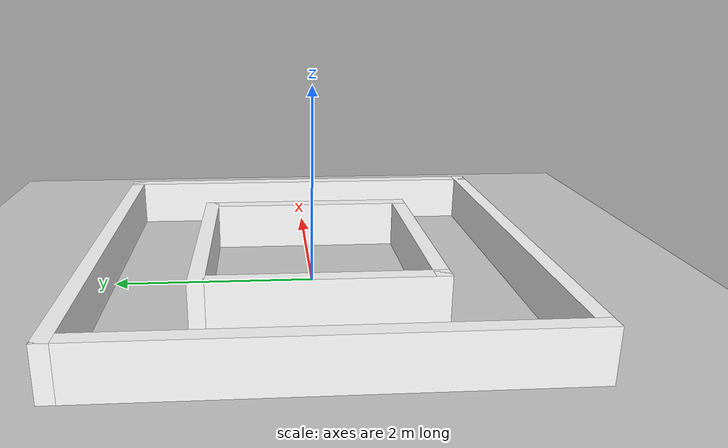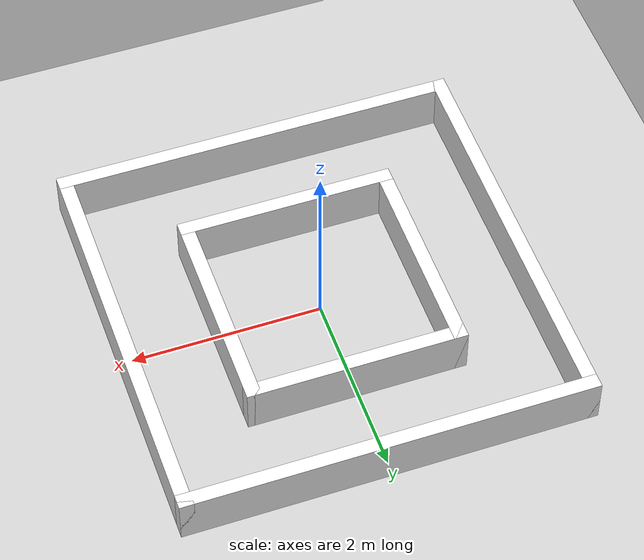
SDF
<sdf version="1.4">
 <world name="default">
  <light name="sun" type="directional">
   <pose>0 0 10 0 -0 0</pose>
   <diffuse>0.8 0.8 0.8 1</diffuse>
   <specular>0.2 0.2 0.2 1</specular>
   <attenuation>
    <range>1000</range>
    <constant>0.9</constant>
    <linear>0.01</linear>
    <quadratic>0.001</quadratic>
   </attenuation>
   <direction>0.5 0.1 -0.9</direction>
  </light>
  <model name="ground_plane">
   <static>1</static>
   <link name="link">
    <collision name="collision">
     <geometry><plane><normal>0 0 1</normal><size>100 100</size></plane></geometry>
     <surface><friction><ode><mu>100</mu><mu2>50</mu2></ode></friction></surface>
    </collision>
    <visual name="visual">
     <cast_shadows>0</cast_shadows>
     <geometry><plane><normal>0 0 1</normal><size>100 100</size></plane></geometry>
     <material>
      <script><uri>file://media/materials/scripts/gazebo.material</uri><name>Gazebo/Grey</name></script>
     </material>
    </visual>
    <velocity_decay><linear>0</linear><angular>0</angular></velocity_decay>
   </link>
  </model>
  <scene><ambient>0.4 0.4 0.4 1</ambient><background>0.7 0.7 0.7 1</background><shadows>0</shadows></scene>
  <physics type="ode">
   <max_step_size>0.01</max_step_size>
   <real_time_factor>1</real_time_factor>
   <real_time_update_rate>0</real_time_update_rate>
   <gravity>0 0 -9.8</gravity>
  </physics>
  <include><uri>model://Maze_ql_1</uri></include>
 </world>
</sdf>

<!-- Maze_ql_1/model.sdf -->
<sdf version='1.5'>
  <model name='Maze_ql_1'>
    <link name='fixed'></link>
    <pose frame=''>0 0 0 0 -0 0</pose>
    <link name='Wall_0'>
      <collision name='Wall_0_Collision'>
        <geometry>
          <box>
            <size>4.3 0.15 0.5</size>
          </box>
        </geometry>
        <pose frame=''>0 0 0.25 0 -0 0</pose>
      </collision>
      <visual name='Wall_0_Visual'>
        <pose frame=''>0 0 0.25 0 -0 0</pose>
        <geometry>
          <box>
            <size>4.3 0.15 0.5</size>
          </box>
        </geometry>
        <material>
          <ambient>1 1 1 1</ambient>
        </material>
      </visual>
      <pose frame=''>0 2.075 0 0 -0 0</pose>
    </link>
    <link name='Wall_2'>
      <collision name='Wall_2_Collision'>
        <geometry>
          <box>
            <size>4.3 0.15 0.5</size>
          </box>
        </geometry>
        <pose frame=''>0 0 0.25 0 -0 0</pose>
      </collision>
      <visual name='Wall_2_Visual'>
        <pose frame=''>0 0 0.25 0 -0 0</pose>
        <geometry>
          <box>
            <size>4.3 0.15 0.5</size>
          </box>
        </geometry>
        <material>
          <ambient>1 1 1 1</ambient>
        </material>
      </visual>
      <pose frame=''>-2.075 0 0 0 0 -1.5708</pose>
    </link>
    <link name='Wall_3'>
      <collision name='Wall_3_Collision'>
        <geometry>
          <box>
            <size>4.3 0.15 0.5</size>
          </box>
        </geometry>
        <pose frame=''>0 0 0.25 0 -0 0</pose>
      </collision>
      <visual name='Wall_3_Visual'>
        <pose frame=''>0 0 0.25 0 -0 0</pose>
        <geometry>
          <box>
            <size>4.3 0.15 0.5</size>
          </box>
        </geometry>
        <material>
          <ambient>1 1 1 1</ambient>
        </material>
      </visual>
      <pose frame=''>0 -2.075 0 0 -0 0</pose>
    </link>
    <link name='Wall_4'>
      <collision name='Wall_4_Collision'>
        <geometry>
          <box>
            <size>4.3 0.15 0.5</size>
          </box>
        </geometry>
        <pose frame=''>0 0 0.25 0 -0 0</pose>
      </collision>
      <visual name='Wall_4_Visual'>
        <pose frame=''>0 0 0.25 0 -0 0</pose>
        <geometry>
          <box>
            <size>4.3 0.15 0.5</size>
          </box>
        </geometry>
        <material>
          <ambient>1 1 1 1</ambient>
        </material>
      </visual>
      <pose frame=''>2.075 0 0 0 -0 1.5708</pose>
    </link>
    <link name='fixed'></link>
    <pose frame=''>0 0 0 0 -0 0</pose>
    <link name='Wall_10'>
      <collision name='Wall_10_Collision'>
        <geometry>
          <box>
            <size>2.3 0.15 0.5</size>
          </box>
        </geometry>
        <pose frame=''>0 0 0.25 0 -0 0</pose>
      </collision>
      <visual name='Wall_10_Visual'>
        <pose frame=''>0 0 0.25 0 -0 0</pose>
        <geometry>
          <box>
            <size>2.3 0.15 0.5</size>
          </box>
        </geometry>
        <material>
          <ambient>1 1 1 1</ambient>
        </material>
      </visual>
      <pose frame=''>0 1.075 0 0 -0 0</pose>
    </link>
    <link name='Wall_20'>
      <collision name='Wall_20_Collision'>
        <geometry>
          <box>
            <size>2.3 0.15 0.5</size>
          </box>
        </geometry>
        <pose frame=''>0 0 0.25 0 -0 0</pose>
      </collision>
      <visual name='Wall_20_Visual'>
        <pose frame=''>0 0 0.25 0 -0 0</pose>
        <geometry>
          <box>
            <size>2.3 0.15 0.5</size>
          </box>
        </geometry>
        <material>
          <ambient>1 1 1 1</ambient>
        </material>
      </visual>
      <pose frame=''>-1.075 0 0 0 0 -1.5708</pose>
    </link>
    <link name='Wall_30'>
      <collision name='Wall_30_Collision'>
        <geometry>
          <box>
            <size>2.3 0.15 0.5</size>
          </box>
        </geometry>
        <pose frame=''>0 0 0.25 0 -0 0</pose>
      </collision>
      <visual name='Wall_30_Visual'>
        <pose frame=''>0 0 0.25 0 -0 0</pose>
        <geometry>
          <box>
            <size>2.3 0.15 0.5</size>
          </box>
        </geometry>
        <material>
          <ambient>1 1 1 1</ambient>
        </material>
      </visual>
      <pose frame=''>0 -1.075 0 0 -0 0</pose>
    </link>
    <link name='Wall_40'>
      <collision name='Wall_40_Collision'>
        <geometry>
          <box>
            <size>2.3 0.15 0.5</size>
          </box>
        </geometry>
        <pose frame=''>0 0 0.25 0 -0 0</pose>
      </collision>
      <visual name='Wall_40_Visual'>
        <pose frame=''>0 0 0.25 0 -0 0</pose>
        <geometry>
          <box>
            <size>2.3 0.15 0.5</size>
          </box>
        </geometry>
        <material>
          <ambient>1 1 1 1</ambient>
        </material>
      </visual>
      <pose frame=''>1.075 0 0 0 -0 1.5708</pose>
    </link>
    <static>1</static>
    <allow_auto_disable>1</allow_auto_disable>
  </model>
</sdf>
